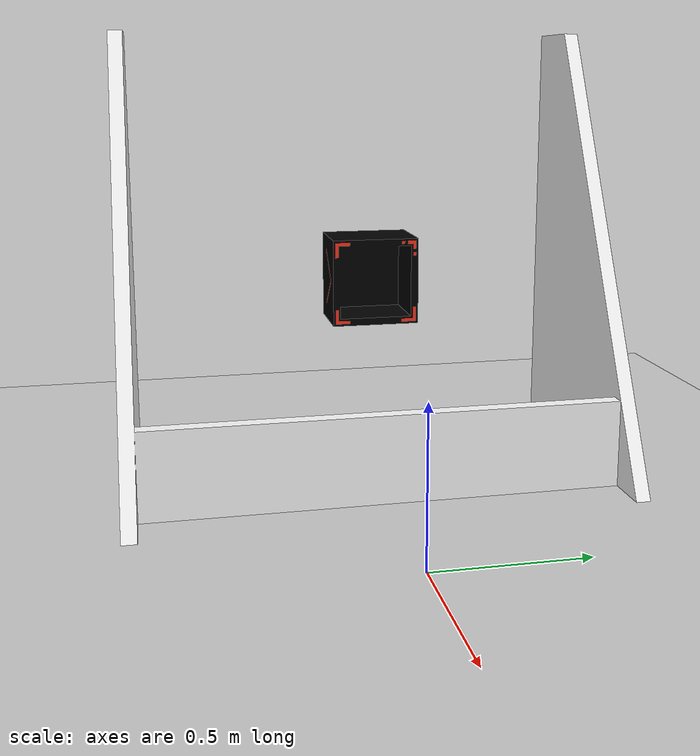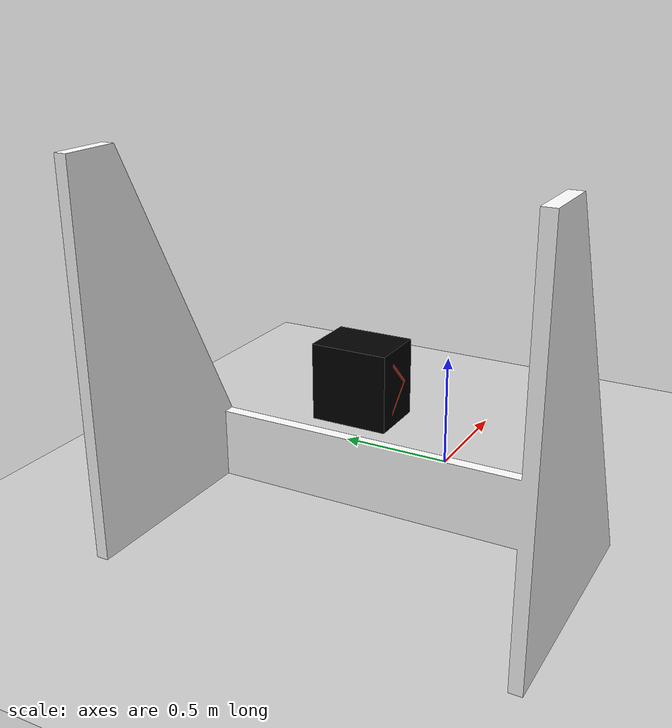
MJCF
<mujoco model="exchanger_scene">
  <!-- 角度用弧度，坐标用 local 系统 -->
  <compiler angle="radian" coordinate="local" meshdir="meshes"/>

  <option timestep="0.002" />

  <asset>
    <!-- 这里的 file 路径你换成自己的 -->
    <mesh name="exchanger_mesh" file="exchanger/exchanger.STL" />
    <mesh name="entry_mesh"     file="exchanger/entry.STL" />
    <mesh name="side_light_mesh"  file="exchanger/side_light.STL" />
    <mesh name="front_light_mesh" file="exchanger/front_light.STL" />

    <!-- 材质：和 URDF 的 white/black/red 对应，再加一点发光 -->
    <material name="exchanger_mat" rgba="1 1 1 1" />
    <material name="entry_mat"     rgba="0 0 0 1" />
    <!-- 灯条：偏红 + emission 让它看起来自己在发光 -->
    <material name="light_mat" rgba="1 0.2 0.1 1" emission="0.8" specular="0.4" />
  </asset>

  <worldbody>
    <!-- 可选地板 -->
    <geom name="floor" type="plane" size="5 5 0.1" rgba="0.8 0.8 0.8 1" />

            <!-- contype="0" conaffinity="0" 会把物体设计为没有碰撞体积的东西 -->

    <!-- exchanger：固定在世界 -->
     <!-- 这个兑换站是非凸的模型()中空的,mujuco算不了这种,要么换成墙,要么换成没碰撞的,说起来好像兑换曹也是 -->
    <body name="exchanger" pos="-0.5 0 0" >
      <geom type="mesh" mesh="exchanger_mesh" material="exchanger_mat" contype="0" conaffinity="0"/>
    </body>

    <!-- entry：顶层 body，带 free joint -->
    <body name="entry"  pos="-0.7 0 0.700" gravcomp="1">
      <!-- gravcomp是关闭重力 -->
      <!-- 这里就是你在代码里用 Eigen 控制的自由关节 -->
      <joint name="entry_free" type="free" />

      <geom type="mesh" mesh="entry_mesh" material="entry_mat" mass="0.5" contype="0" conaffinity="0"/>

      <!-- front_lightbar: origin xyz="0 0 0" rpy="0 0 0" -->
      <body name="front_lightbar" pos="0 0 0" gravcomp="1">
        <geom type="mesh" mesh="front_light_mesh" material="light_mat" mass="0.1" />
      </body>

      <!-- left_lightbar: xyz="-0.1455 0.144 0", rpy="1.57 0 0" -->
      <body name="left_lightbar" pos="-0.1455 0.144 0" euler="1.57 0 0" gravcomp="1">
        <geom type="mesh" mesh="side_light_mesh" material="light_mat" mass="0.05" />
      </body>

      <!-- right_lightbar: xyz="-0.1455 -0.139 0", rpy="1.57 0 0" -->
      <body name="right_lightbar" pos="-0.1455 -0.139 0" euler="1.57 0 0" gravcomp="1">
        <geom type="mesh" mesh="side_light_mesh" material="light_mat" mass="0.05" />
      </body>

    </body>
  </worldbody>
</mujoco>
